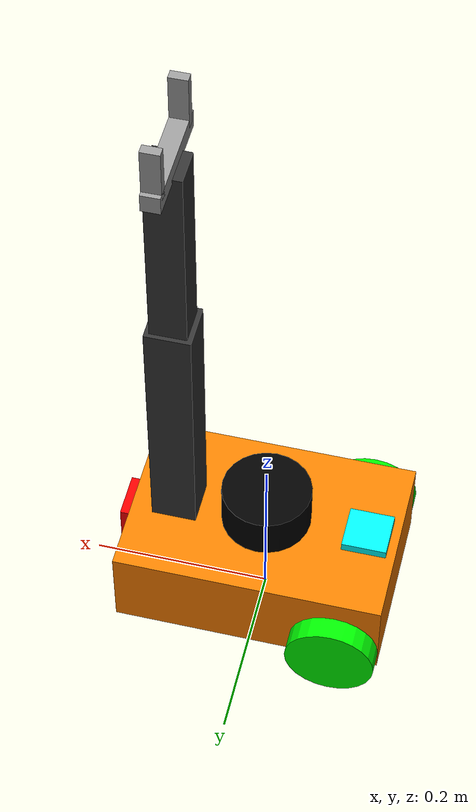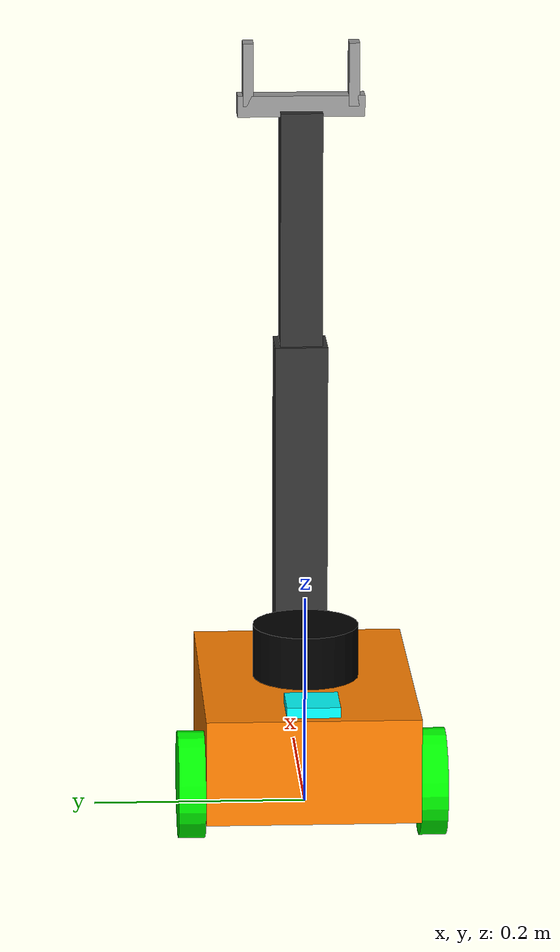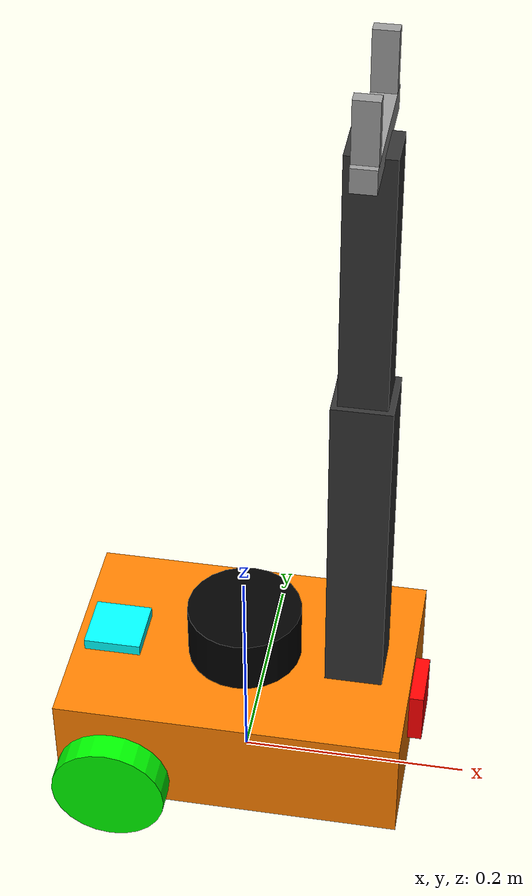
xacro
<?xml version="1.0"?>
<robot xmlns:xacro="http://www.ros.org/wiki/xacro" name="differential_drive_robot">
    <xacro:arg name="initial_positions_file" default="initial_positions.yaml" />

    <!-- Import differential_drive_robot urdf file -->
    <xacro:include filename="$(find gazebo_differential_drive_robot)/urdf/robot.xacro" />

    <!-- Import control_xacro -->
    <xacro:include filename="differential_drive_robot.ros2_control.xacro" />

</robot>

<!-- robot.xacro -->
<robot name="differential_drive_robot" xmlns:xacro="http://www.ros.org/wiki/xacro">

    <!-- Robot Parameters -->
    <xacro:property name="PI" value="3.14159265"/>
    <xacro:property name="body_length" value="0.3"/>
    <xacro:property name="body_width" value="0.2"/>
    <xacro:property name="body_height" value="0.1"/>
    <xacro:property name="body_density" value="7850.0"/> <!-- Steel -->
    <xacro:property name="body_mass" value="${body_density * body_length * body_height * body_width}"/>
    <xacro:property name="body_inertia_x" value="${1.0/12.0 * body_mass * (body_height*body_height + body_width*body_width)}"/>
    <xacro:property name="body_inertia_y" value="${1.0/12.0 * body_mass * (body_length*body_length + body_height*body_height)}"/>
    <xacro:property name="body_inertia_z" value="${1.0/12.0 * body_mass * (body_length*body_length + body_width*body_width)}"/>

    <xacro:property name="wheel_radius" value="0.05"/>
    <xacro:property name="wheel_width" value="0.025"/>
    <xacro:property name="wheel_separation" value="${body_width + wheel_width}"/>
    <xacro:property name="wheel_offset" value="${body_length/2 - wheel_radius}"/>
    <xacro:property name="wheel_density" value="900"/> <!-- Ruber -->
    <xacro:property name="wheel_mass" value="${wheel_density * PI * wheel_radius * wheel_radius * wheel_width}"/>
    <xacro:property name="wheel_inertia_x" value="${1.0/12.0 * wheel_mass * (3*wheel_radius*wheel_radius + wheel_width*wheel_width)}"/>
    <xacro:property name="wheel_inertia_y" value="${1.0/12.0 * wheel_mass * (3*wheel_radius*wheel_radius + wheel_width*wheel_width)}"/>
    <xacro:property name="wheel_inertia_z" value="${1.0/2.0 * wheel_mass * wheel_radius * wheel_radius}"/>

    <xacro:property name="caster_radius" value="0.05"/>
    <xacro:property name="caster_offset" value="${body_length/2 - caster_radius}"/>
    <xacro:property name="caster_density" value="0.1"/>
    <xacro:property name="caster_mass" value="${caster_density * 4.0/3.0 * PI * caster_radius * caster_radius * caster_radius}"/>
    <xacro:property name="caster_inertia_x" value="${2.0/5.0 * caster_mass * caster_radius * caster_radius}"/>
    <xacro:property name="caster_inertia_y" value="${2.0/5.0 * caster_mass * caster_radius * caster_radius}"/>
    <xacro:property name="caster_inertia_z" value="${2.0/5.0 * caster_mass * caster_radius * caster_radius}"/>

    <xacro:property name="lidar_radius" value="0.05"/>
    <xacro:property name="lidar_width" value="0.05"/>

    <!-- Control Parameters -->
    <xacro:property name="max_linear_acceleration" value="10"/>

    <!-- Links -->

    <!-- Virtual Base Footprint Link -->
    <link name="base_footprint"/>

    <!-- Body Link -->
    <link name="base_link">
        <visual>
            <origin xyz="0.0 0.0 0.0" rpy="0.0 0.0 0.0"/>
            <geometry>
                <box size="${body_length} ${body_width} ${body_height}"/>
            </geometry>
            <material name="body_material">
                <color rgba="1.0 0.5 0.00 1.0"/>
            </material>
        </visual>
        <collision>
            <origin xyz="0.0 0.0 0.0" rpy="0.0 0.0 0.0"/>
            <geometry>
                <box size="${body_length} ${body_width} ${body_height}"/>
            </geometry>
        </collision>
        <inertial>
            <mass value="10"/>
            <inertia ixx="${body_inertia_x}" ixy="0.0" ixz="0.0" iyy="${body_inertia_y}" iyz="0" izz="${body_inertia_z}"/>
            <origin xyz="0 0 0" rpy="0 0 0"/>
        </inertial>
    </link>

    <!-- Left Wheel -->
    <link name="left_wheel_link">
        <visual>
            <origin xyz="0.0 0.0 0.0" rpy="1.570795 0.0 0.0"/>
            <geometry>
                <cylinder radius="${wheel_radius}" length="${wheel_width}"/>
            </geometry>
            <material name="left_wheel_material">
                <color rgba="0.0 1.0 0.0 1.0"/>
            </material>
        </visual>
        <collision>
            <origin xyz="0.0 0.0 0.0" rpy="1.570795 0.0 0.0"/>
            <geometry>
                <cylinder radius="${wheel_radius}" length="${wheel_width}"/>
            </geometry>
        </collision>
        <inertial>
            <mass value="2"/>
            <inertia ixx="${wheel_inertia_x}" ixy="0.0" ixz="0.0" iyy="${wheel_inertia_y}" iyz="0" izz="${wheel_inertia_z}"/>
            <origin xyz="0.0 0.0 0.0" rpy="1.570795 0.0 0.0"/>
        </inertial>
    </link>

    <!-- Right Wheel -->
    <link name="right_wheel_link">
        <visual>
            <origin xyz="0.0 0.0 0.0" rpy="1.570795 0.0 0.0"/>
            <geometry>
                <cylinder radius="${wheel_radius}" length="${wheel_width}"/>
            </geometry>
            <material name="right_wheel_material">
                <color rgba="0.0 1.0 0.0 1.0"/>
            </material>
        </visual>
        <collision>
            <origin xyz="0.0 0.0 0.0" rpy="1.570795 0.0 0.0"/>
            <geometry>
                <cylinder radius="${wheel_radius}" length="${wheel_width}"/>
            </geometry>
        </collision>
        <inertial>
            <mass value="2"/>
            <inertia ixx="${wheel_inertia_x}" ixy="0.0" ixz="0.0" iyy="${wheel_inertia_y}" iyz="0" izz="${wheel_inertia_z}"/>
            <origin xyz="0.0 0.0 0.0" rpy="1.570795 0.0 0.0"/>
        </inertial>
    </link>

    <!-- Caster Wheel -->
    <link name="caster_link">
        <visual>
            <origin xyz="0.0 0.0 0.0" rpy="0.0 0.0 0.0"/>
            <geometry>
                <sphere radius="${caster_radius}"/>
            </geometry>
            <material name="caster_material">
                <color rgba="0.0 0.0 1.0 1.0"/>
            </material>
        </visual>
        <collision>
            <origin xyz="0.0 0.0 0.0" rpy="0.0 0.0 0.0"/>
            <geometry>
                <sphere radius="${caster_radius}"/>
            </geometry>
        </collision>
        <inertial>
            <mass value="0.5"/>
            <inertia ixx="${caster_inertia_x}" ixy="0.0" ixz="0.0" iyy="${caster_inertia_y}" iyz="0" izz="${caster_inertia_z}"/>
            <origin xyz="0 0 0" rpy="0 0 0"/>
        </inertial>
    </link>

    <!-- Lidar -->
    <link name="lidar_link">
        <visual>
            <origin xyz="0.0 0.0 ${lidar_width/2}" rpy="0.0 0.0 0.0"/>
            <geometry>
                <cylinder length="${lidar_width}" radius="${lidar_radius}"/>
            </geometry>
            <material name="lidar_material">
                <color rgba="0.0 0.0 0.0 1.0"/>
            </material>
        </visual>
        <collision>
            <origin xyz="0.0 0.0 ${lidar_width/2}" rpy="0.0 0.0 0.0"/>
            <geometry>
                <cylinder length="${lidar_width}" radius="${lidar_radius}"/>
            </geometry>
        </collision>
        <inertial>
            <mass value="0.0001"/>
            <inertia ixx="0.0001" ixy="0.0" ixz="0.0" iyy="0.0001" iyz="0" izz="0.0001"/>
            <origin xyz="0 0 0" rpy="0 0 0"/>
        </inertial>
    </link>

    <link name="camera_link">
        <visual>
            <geometry>
                <box size="0.025 0.05 0.05"/>
            </geometry>
            <material name="camera_material">
                <color rgba="1.0 0.0 0.0 1.0"/>
            </material>
        </visual>
        <collision>
            <geometry>
                <box size="0.025 0.05 0.05"/>
            </geometry>
        </collision>
        <inertial>
            <mass value="0.0001"/>
            <inertia ixx="0.0001" ixy="0.0" ixz="0.0" iyy="0.0001" iyz="0" izz="0.0001"/>
            <origin xyz="0 0 0" rpy="0 0 0"/>
        </inertial>
    </link>
    <link name="camera_link_optical"></link>

    <link name="imu_link">
        <visual>
            <geometry>
                <box size="0.05 0.05 0.02"/>
            </geometry>
            <material name="imu_material">
                <color rgba="0.0 1.0 1.0 1.0"/>
            </material>
        </visual>
        <collision>
            <geometry>
                <box size="0.05 0.05 0.02"/>
            </geometry>
        </collision>
        <inertial>
            <mass value="0.0001"/>
            <inertia ixx="0.0001" ixy="0.0" ixz="0.0" iyy="0.0001" iyz="0" izz="0.0001"/>
            <origin xyz="0 0 0" rpy="0 0 0"/>
        </inertial>
    </link>

    <!-- Joints -->

    <!-- Base Link Joint -->
    <joint name="base_link_joint" type="fixed">
        <parent link="base_footprint"/>
        <child link="base_link"/>
        <origin xyz="0 0 ${body_height/2 + wheel_radius/2}" rpy="0 0 0"/>
    </joint>

    <!-- Left Wheel Joint -->
    <joint name="left_wheel_joint" type="continuous">
        <origin xyz="-${wheel_offset} ${wheel_separation/2} -${wheel_radius/2}" rpy="0 0 0"/>
        <parent link="base_link"/>
        <child link="left_wheel_link"/>
        <axis xyz="0 1 0"/>
        <limit effort="100" velocity="10.0"/>
        <dynamics damping="0.1" friction="0.1"/>
    </joint>

    <!-- Right Wheel Joint -->
    <joint name="right_wheel_joint" type="continuous">
        <origin xyz="-${wheel_offset} ${-wheel_separation/2} -${wheel_radius/2}" rpy="0 0 0"/>
        <parent link="base_link"/>
        <child link="right_wheel_link"/>
        <axis xyz="0 1 0"/>
        <limit effort="100" velocity="10.0"/>
        <dynamics damping="0.1" friction="0.1"/>
    </joint>

    <!-- Caster Wheel Joint (fixed) -->
    <joint name="caster_joint" type="fixed">
        <origin xyz="${caster_offset} 0 -${caster_radius/2}" rpy="0 0 0"/>
        <parent link="base_link"/>
        <child link="caster_link"/>
    </joint>

    <!-- Lidar Joint (fixed) -->
    <joint name="lidar_joint" type="fixed">
        <origin xyz="0 0 ${lidar_width}" rpy="0 0 0"/>
        <parent link="base_link"/>
        <child link="lidar_link"/>
        <axis xyz="0 1 0" rpt="0 0 0" />
    </joint>

    <joint name="camera_joint" type="fixed">
        <parent link="base_link"/>
        <child link="camera_link"/>
        <origin xyz="${body_length/2} 0 ${body_height/8}" rpy="0 0 0"/>
    </joint>

    <joint name="camera_optical_joint" type="fixed">
        <parent link="camera_link"/>
        <child link="camera_link_optical"/>
        <origin xyz="0 0 0" rpy="${-pi/2} 0 ${-pi/2}"/>
    </joint>

    <joint name="imu_joint" type="fixed">
        <parent link="base_link"/>
        <child link="imu_link"/>
        <origin xyz="${-body_length/4 - 0.04} 0 ${body_height/2}" rpy="0 0 0"/>
    </joint>

    <xacro:include filename="arm.xacro" />

    <!-- Gazebo Parameters -->
    <gazebo reference="base_link">
        <mu1>1.0</mu1>
        <mu2>1.0</mu2>
    </gazebo>

    <gazebo reference="right_wheel_link">
        <mu1>1.0</mu1>
        <mu2>1.0</mu2>
    </gazebo>

    <gazebo reference="left_wheel_link">
        <mu1>1.0</mu1>
        <mu2>1.0</mu2>
    </gazebo>

    <gazebo reference="caster_link">
        <mu1>0.000001</mu1>
        <mu2>0.000001</mu2>
    </gazebo>

    <gazebo reference="camera_link">
        <mu1>0.000001</mu1>
        <mu2>0.000001</mu2>
    </gazebo>

    <gazebo reference="imu_link">
        <mu1>0.000001</mu1>
        <mu2>0.000001</mu2>
    </gazebo>

    <!-- Gazebo plugins -->

    <gazebo reference="lidar_link">
        <!-- Required: 'gpu_ray' is optimized for Harmonic/Ogre2 -->
        <sensor name="lidar_link" type="gpu_ray">
        <pose relative_to='lidar_link'>0 0 ${lidar_width/2} 0 0 0</pose>
        <topic>/scan</topic>
        <gz_frame_id>lidar_link</gz_frame_id>
        <update_rate>10.0</update_rate>
        <always_on>1</always_on>
        <visualize>true</visualize>
        <ray>
            <scan>
                <horizontal>
                    <samples>360</samples>
                    <resolution>1</resolution>
                    <min_angle>-3.14159</min_angle>
                    <max_angle>3.14159</max_angle>
                </horizontal>
                <!-- Explicitly force a single vertical slice for 2D operation -->
                <vertical>
                    <samples>1</samples>
                    <resolution>1</resolution>
                    <min_angle>0.0</min_angle>
                    <max_angle>0.0</max_angle>
                </vertical>
                </scan>
            <range>
                <min>0.12</min>
                <max>12.0</max>
                <resolution>0.01</resolution>
                </range>
            <!-- Optional noise modeling mimicking real-world data -->
            <noise>
                <type>gaussian</type>
                <mean>0.0</mean>
                <stddev>0.01</stddev>
                </noise>
        </ray>
        <plugin filename="gz-sim-sensors-system" name="gz::sim::systems::Sensors">
            <render_type>ogre2</render_type>
        </plugin>
        </sensor>
    </gazebo>

    <gazebo reference="camera_link">
        <sensor name="camera" type="camera">
            <pose> 0 0 0 0 0 0 </pose>
            <visualize>true</visualize>
            <update_rate>10</update_rate>
            <camera>
                <horizontal_fov>1.089</horizontal_fov>
                <image>
                    <format>R8G8B8</format>
                    <width>640</width>
                    <height>480</height>
                </image>
                <clip>
                    <near>0.05</near>
                    <far>8.0</far>
                </clip>
            </camera>
            <topic>camera/image_raw</topic>
            <gz_frame_id>camera_link_optical</gz_frame_id>
        </sensor>
    </gazebo>

    <gazebo reference="imu_link">
        <sensor name="imu_sensor" type="imu">
            <always_on>1</always_on>
            <update_rate>100</update_rate>
            <visualize>true</visualize>
            <topic>imu</topic>
            <plugin filename="gz-sim-imu-system" name="gz::sim::systems::Imu"/>
        </sensor>
    </gazebo>

    <ros2_control name="GazeboSimSystem" type="system">
        <hardware>
            <plugin>gz_ros2_control/GazeboSimSystem</plugin>
        </hardware>

        <joint name="left_wheel_joint">
            <command_interface name="velocity"/>
            <state_interface name="position"/>
            <state_interface name="velocity"/>
        </joint>

        <joint name="right_wheel_joint">
            <command_interface name="velocity"/>
            <state_interface name="position"/>
            <state_interface name="velocity"/>
        </joint>

        <sensor name="imu_sensor">
            <state_interface name="orientation.x"/>
            <state_interface name="orientation.y"/>
            <state_interface name="orientation.z"/>
            <state_interface name="orientation.w"/>
            <state_interface name="angular_velocity.x"/>
            <state_interface name="angular_velocity.y"/>
            <state_interface name="angular_velocity.z"/>
            <state_interface name="linear_acceleration.x"/>
            <state_interface name="linear_acceleration.y"/>
            <state_interface name="linear_acceleration.z"/>
        </sensor>

        <joint name="joint_1">
            <command_interface name="position">
                <param name="min">-3.14</param>
                <param name="max">3.14</param>
            </command_interface>
            <state_interface name="position">
                <param name="initial_value">0.0</param>
            </state_interface>
            <state_interface name="velocity"/>
        </joint>

        <joint name="joint_2">
            <command_interface name="position">
                <param name="min">-1.57</param>
                <param name="max">1.57</param>
            </command_interface>
            <state_interface name="position">
                <param name="initial_value">0.0</param>
            </state_interface>
            <state_interface name="velocity"/>
        </joint>

        <joint name="left_finger_joint">
            <command_interface name="position">
                <param name="min">0.0</param>
                <param name="max">0.04</param>
            </command_interface>
            <state_interface name="position">
                <param name="initial_value">0.0</param>
            </state_interface>
            <state_interface name="velocity"/>
        </joint>

        <joint name="right_finger_joint">
             <state_interface name="position">
                <param name="initial_value">0.0</param>
            </state_interface>
            <state_interface name="velocity"/>
        </joint>
    </ros2_control>

    <gazebo>
        <plugin filename="gz_ros2_control-system" name="gz_ros2_control::GazeboSimROS2ControlPlugin">
            <parameters>$(find gazebo_differential_drive_robot)/config/ros2_controllers.yaml</parameters>
        </plugin>
    </gazebo>

</robot>

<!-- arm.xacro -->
<robot xmlns:xacro="http://www.ros.org/wiki/xacro">

  <!-- ==================== Arm Links & Joints ==================== -->
  <xacro:property name="arm_offset" value="${body_length/2 - caster_radius}"/>

  <!-- Shoulder Joint (Rotation around Z) -->
  <joint name="joint_1" type="revolute">
    <parent link="base_link"/>
    <child link="link_1"/>
    <origin xyz="${arm_offset} 0.0 0.0" rpy="0 0 0"/>
    <axis xyz="0 0 1"/>
    <limit lower="-3.14" upper="3.14" effort="10.0" velocity="1.0"/>
  </joint>

  <!-- Link 1 (Upper Arm) -->
  <link name="link_1">
    <visual>
      <origin xyz="0 0 0.2" rpy="0 0 0"/>
      <geometry><box size="0.05 0.05 0.3"/></geometry>
        <material name="link_1_material">
          <color rgba="0.2 0.2 0.2 1.0"/>
        </material>
    </visual>
    <collision>
      <origin xyz="0 0 0.2" rpy="0 0 0"/>
      <geometry><box size="0.05 0.05 0.3"/></geometry>
    </collision>
    <inertial>
      <origin xyz="0 0 0.2"/>
      <mass value="0.5"/>
      <inertia ixx="0.0068" ixy="0" ixz="0" iyy="0.0068" iyz="0" izz="0.0002"/>
    </inertial>
  </link>

  <!-- Elbow Joint (Rotation around Y) -->
  <joint name="joint_2" type="revolute">
    <parent link="link_1"/>
    <child link="link_2"/>
    <origin xyz="0 0 0.3" rpy="0 0 0"/>
    <axis xyz="0 1 0"/>
    <limit lower="-1.57" upper="1.57" effort="10.0" velocity="1.0"/>
  </joint>

  <!-- Link 2 (Forearm) -->
  <link name="link_2">
    <visual>
      <origin xyz="0 0 0.15" rpy="0 0 0"/>
      <geometry><box size="0.04 0.04 0.25"/></geometry>
        <material name="link_2_material">
          <color rgba="0.2 0.2 0.2 1.0"/>
        </material>
    </visual>
    <collision>
      <origin xyz="0 0 0.15" rpy="0 0 0"/>
      <geometry><box size="0.04 0.04 0.25"/></geometry>
    </collision>
    <inertial>
      <origin xyz="0 0 0.15"/>
      <mass value="0.4"/>
      <inertia ixx="0.0031" ixy="0" ixz="0" iyy="0.0031" iyz="0" izz="0.0001"/>
    </inertial>
  </link>

  <!-- ==================== Gripper Base ==================== -->
  <joint name="gripper_base_joint" type="fixed">
    <parent link="link_2"/>
    <child link="gripper_base"/>
    <origin xyz="0 0 0.28" rpy="0 0 0"/>
  </joint>

  <link name="gripper_base">
    <visual>
      <geometry><box size="0.02 0.12 0.02"/></geometry>
        <material name="gripper_base_material">
          <color rgba="0.6 0.6 0.6 1.0"/>
        </material>
    </visual>
    <collision>
      <geometry><box size="0.02 0.12 0.02"/></geometry>
    </collision>
    <inertial>
      <mass value="0.1"/>
      <inertia ixx="0.00012" ixy="0" ixz="0" iyy="0.00001" iyz="0" izz="0.00012"/>
    </inertial>
  </link>

  <!-- ==================== Gripper Fingers ==================== -->
  <!-- Left Finger (Prismatic Active Joint) -->
  <!-- The main active joint controlled by the gripper plugin -->
  <joint name="left_finger_joint" type="prismatic">
    <parent link="gripper_base"/>
    <child link="left_finger"/>
    <origin xyz="0 0.05 0" rpy="0 0 0"/>
    <axis xyz="0 1 0"/>
    <limit effort="20.0" lower="0.0" upper="0.04" velocity="0.2"/>
  </joint>

  <link name="left_finger">
    <visual>
      <origin xyz="0 0 0.03" rpy="0 0 0"/>
      <geometry><box size="0.02 0.01 0.06"/></geometry>
      <material name="left_finger_material">
        <color rgba="0.6 0.6 0.6 1.0"/>
      </material>
    </visual>
    <collision>
      <origin xyz="0 0 0.03" rpy="0 0 0"/>
      <geometry><box size="0.02 0.01 0.06"/></geometry>
    </collision>
    <inertial>
      <mass value="0.02"/>
      <inertia ixx="0.000006" ixy="0" ixz="0" iyy="0.000006" iyz="0" izz="0.000001"/>
    </inertial>
  </link>

  <!-- Right Finger (Prismatic Mimic Joint) -->
  <joint name="right_finger_joint" type="prismatic">
    <parent link="gripper_base"/>
    <child link="right_finger"/>
    <origin xyz="0 -0.05 0" rpy="0 0 0"/>
    <axis xyz="0 -1 0"/>
    <limit effort="20.0" lower="0.0" upper="0.04" velocity="0.2"/>
    <mimic joint="left_finger_joint" multiplier="1.0" offset="0.0"/>
  </joint>

  <link name="right_finger">
    <visual>
      <origin xyz="0 0 0.03" rpy="0 0 0"/>
      <geometry><box size="0.02 0.01 0.06"/></geometry>
        <material name="right_finger_material">
          <color rgba="0.6 0.6 0.6 1.0"/>
        </material>
    </visual>
    <collision>
      <origin xyz="0 0 0.03" rpy="0 0 0"/>
      <geometry><box size="0.02 0.01 0.06"/></geometry>
    </collision>
    <inertial>
      <mass value="0.02"/>
      <inertia ixx="0.000006" ixy="0" ixz="0" iyy="0.000006" iyz="0" izz="0.000001"/>
    </inertial>
  </link>

</robot>
